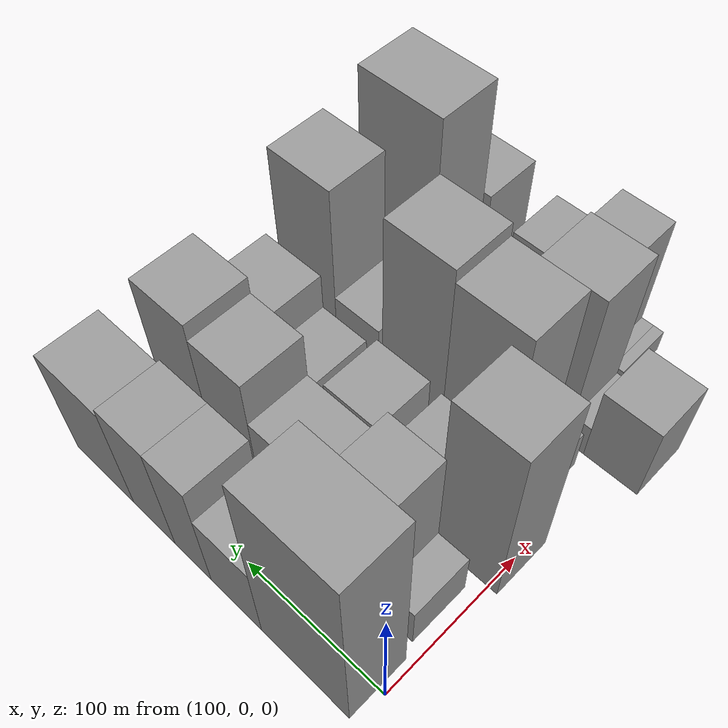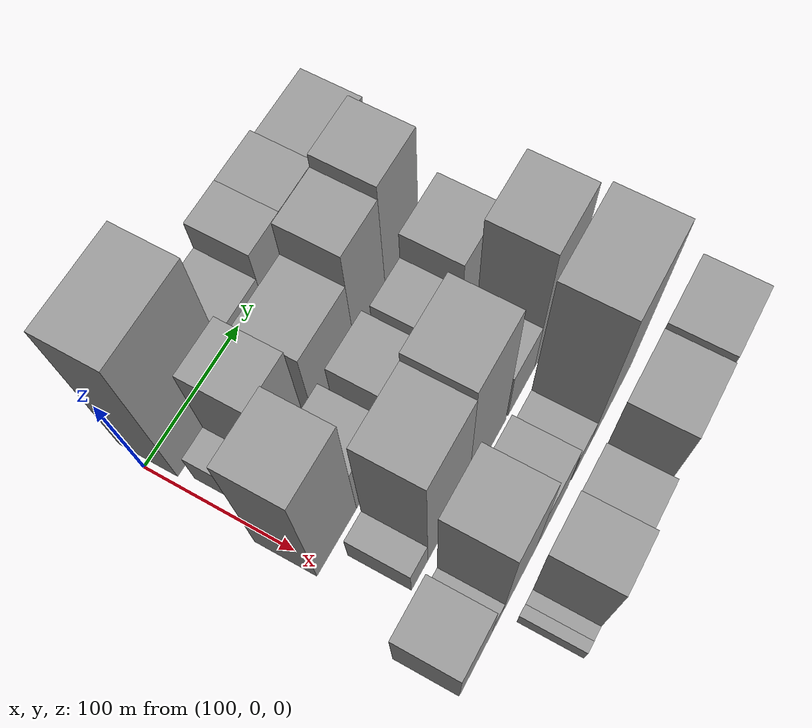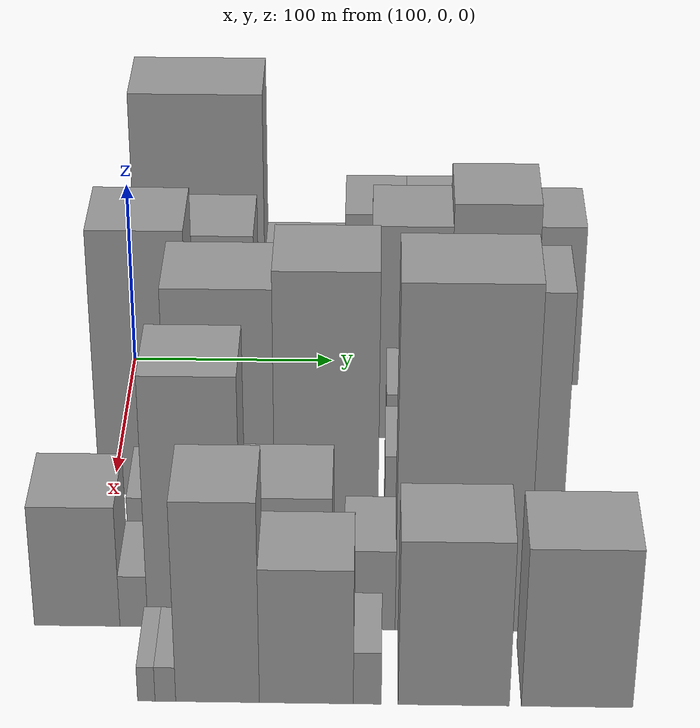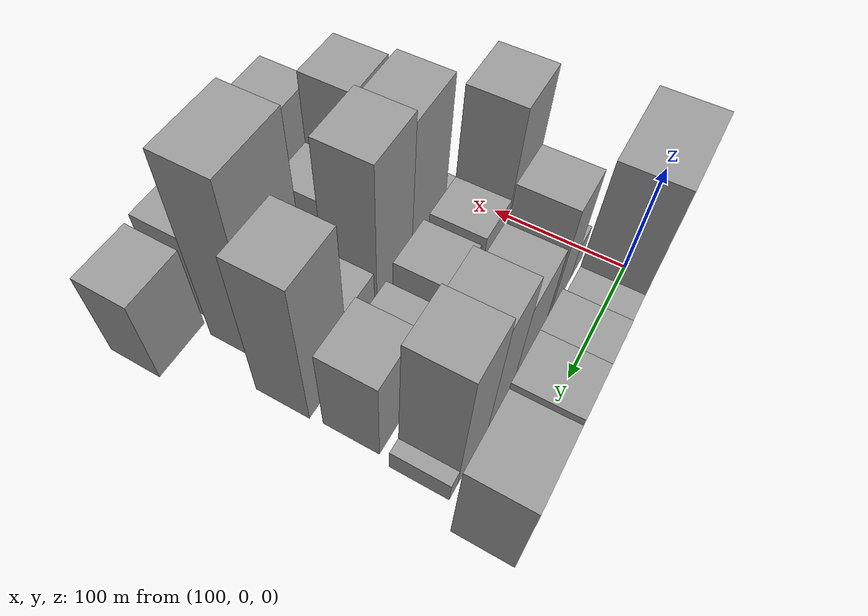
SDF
<sdf version="1.6">
 <world name="default">
  <model name="building_23">
   <static>1</static>
   <pose>100.0000 36.1751 0 0.000000 0.000000 0.000000</pose>
   <link name="link">
    <pose>0 0 79.50 0 0 0</pose>
    <collision name="collision"><geometry><box><size>40.0000 63.0457 159.0000</size></box></geometry></collision>
    <visual name="visual">
     <cast_shadows>0</cast_shadows>
     <geometry><box><size>40.0000 63.0457 159.0000</size></box></geometry>
     <material>
      <script>
       <uri>model://grey_wall/materials/scripts</uri>
       <uri>model://grey_wall/materials/textures</uri>
       <name>vrc/grey_wall</name>
      </script>
     </material>
    </visual>
   </link>
  </model>
  <model name="building_24">
   <static>1</static>
   <pose>100.0000 87.2624 0 0.000000 0.000000 0.000000</pose>
   <link name="link">
    <pose>0 0 34.50 0 0 0</pose>
    <collision name="collision"><geometry><box><size>40.0000 39.1290 69.0000</size></box></geometry></collision>
    <visual name="visual">
     <cast_shadows>0</cast_shadows>
     <geometry><box><size>40.0000 39.1290 69.0000</size></box></geometry>
     <material>
      <script>
       <uri>model://grey_wall/materials/scripts</uri>
       <uri>model://grey_wall/materials/textures</uri>
       <name>vrc/grey_wall</name>
      </script>
     </material>
    </visual>
   </link>
  </model>
  <model name="building_25">
   <static>1</static>
   <pose>100.0000 121.6511 0 0.000000 0.000000 0.000000</pose>
   <link name="link">
    <pose>0 0 48.00 0 0 0</pose>
    <collision name="collision"><geometry><box><size>40.0000 29.6482 96.0000</size></box></geometry></collision>
    <visual name="visual">
     <cast_shadows>0</cast_shadows>
     <geometry><box><size>40.0000 29.6482 96.0000</size></box></geometry>
     <material>
      <script>
       <uri>model://grey_wall/materials/scripts</uri>
       <uri>model://grey_wall/materials/textures</uri>
       <name>vrc/grey_wall</name>
      </script>
     </material>
    </visual>
   </link>
  </model>
  <model name="building_26">
   <static>1</static>
   <pose>100.0000 154.2542 0 0.000000 0.000000 0.000000</pose>
   <link name="link">
    <pose>0 0 48.00 0 0 0</pose>
    <collision name="collision"><geometry><box><size>40.0000 35.5580 96.0000</size></box></geometry></collision>
    <visual name="visual">
     <cast_shadows>0</cast_shadows>
     <geometry><box><size>40.0000 35.5580 96.0000</size></box></geometry>
     <material>
      <script>
       <uri>model://grey_wall/materials/scripts</uri>
       <uri>model://grey_wall/materials/textures</uri>
       <name>vrc/grey_wall</name>
      </script>
     </material>
    </visual>
   </link>
  </model>
  <model name="building_27">
   <static>1</static>
   <pose>100.0000 197.6740 0 0.000000 0.000000 0.000000</pose>
   <link name="link">
    <pose>0 0 45.00 0 0 0</pose>
    <collision name="collision"><geometry><box><size>40.0000 51.2816 90.0000</size></box></geometry></collision>
    <visual name="visual">
     <cast_shadows>0</cast_shadows>
     <geometry><box><size>40.0000 51.2816 90.0000</size></box></geometry>
     <material>
      <script>
       <uri>model://grey_wall/materials/scripts</uri>
       <uri>model://grey_wall/materials/textures</uri>
       <name>vrc/grey_wall</name>
      </script>
     </material>
    </visual>
   </link>
  </model>
  <model name="building_71">
   <static>1</static>
   <pose>149.0000 18.7210 0 0.000000 0.000000 0.000000</pose>
   <link name="link">
    <pose>0 0 18.00 0 0 0</pose>
    <collision name="collision"><geometry><box><size>40.0000 20.7294 36.0000</size></box></geometry></collision>
    <visual name="visual">
     <cast_shadows>0</cast_shadows>
     <geometry><box><size>40.0000 20.7294 36.0000</size></box></geometry>
     <material>
      <script>
       <uri>model://grey_wall/materials/scripts</uri>
       <uri>model://grey_wall/materials/textures</uri>
       <name>vrc/grey_wall</name>
      </script>
     </material>
    </visual>
   </link>
  </model>
  <model name="building_72">
   <static>1</static>
   <pose>149.0000 47.0269 0 0.000000 0.000000 0.000000</pose>
   <link name="link">
    <pose>0 0 55.50 0 0 0</pose>
    <collision name="collision"><geometry><box><size>40.0000 35.8823 111.0000</size></box></geometry></collision>
    <visual name="visual">
     <cast_shadows>0</cast_shadows>
     <geometry><box><size>40.0000 35.8823 111.0000</size></box></geometry>
     <material>
      <script>
       <uri>model://grey_wall/materials/scripts</uri>
       <uri>model://grey_wall/materials/textures</uri>
       <name>vrc/grey_wall</name>
      </script>
     </material>
    </visual>
   </link>
  </model>
  <model name="building_73">
   <static>1</static>
   <pose>149.0000 95.9971 0 0.000000 0.000000 0.000000</pose>
   <link name="link">
    <pose>0 0 42.00 0 0 0</pose>
    <collision name="collision"><geometry><box><size>40.0000 48.0582 84.0000</size></box></geometry></collision>
    <visual name="visual">
     <cast_shadows>0</cast_shadows>
     <geometry><box><size>40.0000 48.0582 84.0000</size></box></geometry>
     <material>
      <script>
       <uri>model://grey_wall/materials/scripts</uri>
       <uri>model://grey_wall/materials/textures</uri>
       <name>vrc/grey_wall</name>
      </script>
     </material>
    </visual>
   </link>
  </model>
  <model name="building_74">
   <static>1</static>
   <pose>149.0000 138.6217 0 0.000000 0.000000 0.000000</pose>
   <link name="link">
    <pose>0 0 58.50 0 0 0</pose>
    <collision name="collision"><geometry><box><size>40.0000 37.1909 117.0000</size></box></geometry></collision>
    <visual name="visual">
     <cast_shadows>0</cast_shadows>
     <geometry><box><size>40.0000 37.1909 117.0000</size></box></geometry>
     <material>
      <script>
       <uri>model://grey_wall/materials/scripts</uri>
       <uri>model://grey_wall/materials/textures</uri>
       <name>vrc/grey_wall</name>
      </script>
     </material>
    </visual>
   </link>
  </model>
  <model name="building_75">
   <static>1</static>
   <pose>149.0000 177.3120 0 0.000000 0.000000 0.000000</pose>
   <link name="link">
    <pose>0 0 64.50 0 0 0</pose>
    <collision name="collision"><geometry><box><size>40.0000 40.1896 129.0000</size></box></geometry></collision>
    <visual name="visual">
     <cast_shadows>0</cast_shadows>
     <geometry><box><size>40.0000 40.1896 129.0000</size></box></geometry>
     <material>
      <script>
       <uri>model://grey_wall/materials/scripts</uri>
       <uri>model://grey_wall/materials/textures</uri>
       <name>vrc/grey_wall</name>
      </script>
     </material>
    </visual>
   </link>
  </model>
  <model name="building_76">
   <static>1</static>
   <pose>149.0000 202.5892 0 0.000000 0.000000 0.000000</pose>
   <link name="link">
    <pose>0 0 10.50 0 0 0</pose>
    <collision name="collision"><geometry><box><size>40.0000 10.3649 21.0000</size></box></geometry></collision>
    <visual name="visual">
     <cast_shadows>0</cast_shadows>
     <geometry><box><size>40.0000 10.3649 21.0000</size></box></geometry>
     <material>
      <script>
       <uri>model://grey_wall/materials/scripts</uri>
       <uri>model://grey_wall/materials/textures</uri>
       <name>vrc/grey_wall</name>
      </script>
     </material>
    </visual>
   </link>
  </model>
  <model name="building_120">
   <static>1</static>
   <pose>198.0000 15.4298 0 0.000000 0.000000 0.000000</pose>
   <link name="link">
    <pose>0 0 70.50 0 0 0</pose>
    <collision name="collision"><geometry><box><size>40.0000 43.1489 141.0000</size></box></geometry></collision>
    <visual name="visual">
     <cast_shadows>0</cast_shadows>
     <geometry><box><size>40.0000 43.1489 141.0000</size></box></geometry>
     <material>
      <script>
       <uri>model://grey_wall/materials/scripts</uri>
       <uri>model://grey_wall/materials/textures</uri>
       <name>vrc/grey_wall</name>
      </script>
     </material>
    </visual>
   </link>
  </model>
  <model name="building_121">
   <static>1</static>
   <pose>198.0000 54.9198 0 0.000000 0.000000 0.000000</pose>
   <link name="link">
    <pose>0 0 31.50 0 0 0</pose>
    <collision name="collision"><geometry><box><size>40.0000 35.8312 63.0000</size></box></geometry></collision>
    <visual name="visual">
     <cast_shadows>0</cast_shadows>
     <geometry><box><size>40.0000 35.8312 63.0000</size></box></geometry>
     <material>
      <script>
       <uri>model://grey_wall/materials/scripts</uri>
       <uri>model://grey_wall/materials/textures</uri>
       <name>vrc/grey_wall</name>
      </script>
     </material>
    </visual>
   </link>
  </model>
  <model name="building_122">
   <static>1</static>
   <pose>198.0000 100.0027 0 0.000000 0.000000 0.000000</pose>
   <link name="link">
    <pose>0 0 33.00 0 0 0</pose>
    <collision name="collision"><geometry><box><size>40.0000 38.3345 66.0000</size></box></geometry></collision>
    <visual name="visual">
     <cast_shadows>0</cast_shadows>
     <geometry><box><size>40.0000 38.3345 66.0000</size></box></geometry>
     <material>
      <script>
       <uri>model://grey_wall/materials/scripts</uri>
       <uri>model://grey_wall/materials/textures</uri>
       <name>vrc/grey_wall</name>
      </script>
     </material>
    </visual>
   </link>
  </model>
  <model name="building_123">
   <static>1</static>
   <pose>198.0000 143.9667 0 0.000000 0.000000 0.000000</pose>
   <link name="link">
    <pose>0 0 28.50 0 0 0</pose>
    <collision name="collision"><geometry><box><size>40.0000 33.5934 57.0000</size></box></geometry></collision>
    <visual name="visual">
     <cast_shadows>0</cast_shadows>
     <geometry><box><size>40.0000 33.5934 57.0000</size></box></geometry>
     <material>
      <script>
       <uri>model://grey_wall/materials/scripts</uri>
       <uri>model://grey_wall/materials/textures</uri>
       <name>vrc/grey_wall</name>
      </script>
     </material>
    </visual>
   </link>
  </model>
  <model name="building_124">
   <static>1</static>
   <pose>198.0000 182.4248 0 0.000000 0.000000 0.000000</pose>
   <link name="link">
    <pose>0 0 42.00 0 0 0</pose>
    <collision name="collision"><geometry><box><size>40.0000 43.3229 84.0000</size></box></geometry></collision>
    <visual name="visual">
     <cast_shadows>0</cast_shadows>
     <geometry><box><size>40.0000 43.3229 84.0000</size></box></geometry>
     <material>
      <script>
       <uri>model://grey_wall/materials/scripts</uri>
       <uri>model://grey_wall/materials/textures</uri>
       <name>vrc/grey_wall</name>
      </script>
     </material>
    </visual>
   </link>
  </model>
  <model name="building_166">
   <static>1</static>
   <pose>247.0000 21.2258 0 0.000000 0.000000 0.000000</pose>
   <link name="link">
    <pose>0 0 16.50 0 0 0</pose>
    <collision name="collision"><geometry><box><size>40.0000 18.5061 33.0000</size></box></geometry></collision>
    <visual name="visual">
     <cast_shadows>0</cast_shadows>
     <geometry><box><size>40.0000 18.5061 33.0000</size></box></geometry>
     <material>
      <script>
       <uri>model://grey_wall/materials/scripts</uri>
       <uri>model://grey_wall/materials/textures</uri>
       <name>vrc/grey_wall</name>
      </script>
     </material>
    </visual>
   </link>
  </model>
  <model name="building_167">
   <static>1</static>
   <pose>247.0000 54.1543 0 0.000000 0.000000 0.000000</pose>
   <link name="link">
    <pose>0 0 70.50 0 0 0</pose>
    <collision name="collision"><geometry><box><size>40.0000 47.3509 141.0000</size></box></geometry></collision>
    <visual name="visual">
     <cast_shadows>0</cast_shadows>
     <geometry><box><size>40.0000 47.3509 141.0000</size></box></geometry>
     <material>
      <script>
       <uri>model://grey_wall/materials/scripts</uri>
       <uri>model://grey_wall/materials/textures</uri>
       <name>vrc/grey_wall</name>
      </script>
     </material>
    </visual>
   </link>
  </model>
  <model name="building_168">
   <static>1</static>
   <pose>247.0000 100.7148 0 0.000000 0.000000 0.000000</pose>
   <link name="link">
    <pose>0 0 75.00 0 0 0</pose>
    <collision name="collision"><geometry><box><size>40.0000 45.7701 150.0000</size></box></geometry></collision>
    <visual name="visual">
     <cast_shadows>0</cast_shadows>
     <geometry><box><size>40.0000 45.7701 150.0000</size></box></geometry>
     <material>
      <script>
       <uri>model://grey_wall/materials/scripts</uri>
       <uri>model://grey_wall/materials/textures</uri>
       <name>vrc/grey_wall</name>
      </script>
     </material>
    </visual>
   </link>
  </model>
  <model name="building_169">
   <static>1</static>
   <pose>247.0000 143.5671 0 0.000000 0.000000 0.000000</pose>
   <link name="link">
    <pose>0 0 28.50 0 0 0</pose>
    <collision name="collision"><geometry><box><size>40.0000 33.9347 57.0000</size></box></geometry></collision>
    <visual name="visual">
     <cast_shadows>0</cast_shadows>
     <geometry><box><size>40.0000 33.9347 57.0000</size></box></geometry>
     <material>
      <script>
       <uri>model://grey_wall/materials/scripts</uri>
       <uri>model://grey_wall/materials/textures</uri>
       <name>vrc/grey_wall</name>
      </script>
     </material>
    </visual>
   </link>
  </model>
  <model name="building_170">
   <static>1</static>
   <pose>247.0000 183.0940 0 0.000000 0.000000 0.000000</pose>
   <link name="link">
    <pose>0 0 70.50 0 0 0</pose>
    <collision name="collision"><geometry><box><size>40.0000 45.1190 141.0000</size></box></geometry></collision>
    <visual name="visual">
     <cast_shadows>0</cast_shadows>
     <geometry><box><size>40.0000 45.1190 141.0000</size></box></geometry>
     <material>
      <script>
       <uri>model://grey_wall/materials/scripts</uri>
       <uri>model://grey_wall/materials/textures</uri>
       <name>vrc/grey_wall</name>
      </script>
     </material>
    </visual>
   </link>
  </model>
  <model name="building_211">
   <static>1</static>
   <pose>296.0000 -6.0958 0 0.000000 0.000000 0.000000</pose>
   <link name="link">
    <pose>0 0 31.50 0 0 0</pose>
    <collision name="collision"><geometry><box><size>40.0000 37.0488 63.0000</size></box></geometry></collision>
    <visual name="visual">
     <cast_shadows>0</cast_shadows>
     <geometry><box><size>40.0000 37.0488 63.0000</size></box></geometry>
     <material>
      <script>
       <uri>model://grey_wall/materials/scripts</uri>
       <uri>model://grey_wall/materials/textures</uri>
       <name>vrc/grey_wall</name>
      </script>
     </material>
    </visual>
   </link>
  </model>
  <model name="building_212">
   <static>1</static>
   <pose>296.0000 18.4935 0 0.000000 0.000000 0.000000</pose>
   <link name="link">
    <pose>0 0 13.50 0 0 0</pose>
    <collision name="collision"><geometry><box><size>40.0000 12.1298 27.0000</size></box></geometry></collision>
    <visual name="visual">
     <cast_shadows>0</cast_shadows>
     <geometry><box><size>40.0000 12.1298 27.0000</size></box></geometry>
     <material>
      <script>
       <uri>model://grey_wall/materials/scripts</uri>
       <uri>model://grey_wall/materials/textures</uri>
       <name>vrc/grey_wall</name>
      </script>
     </material>
    </visual>
   </link>
  </model>
  <model name="building_213">
   <static>1</static>
   <pose>296.0000 44.9149 0 0.000000 0.000000 0.000000</pose>
   <link name="link">
    <pose>0 0 64.50 0 0 0</pose>
    <collision name="collision"><geometry><box><size>40.0000 40.7130 129.0000</size></box></geometry></collision>
    <visual name="visual">
     <cast_shadows>0</cast_shadows>
     <geometry><box><size>40.0000 40.7130 129.0000</size></box></geometry>
     <material>
      <script>
       <uri>model://grey_wall/materials/scripts</uri>
       <uri>model://grey_wall/materials/textures</uri>
       <name>vrc/grey_wall</name>
      </script>
     </material>
    </visual>
   </link>
  </model>
  <model name="building_214">
   <static>1</static>
   <pose>296.0000 84.7543 0 0.000000 0.000000 0.000000</pose>
   <link name="link">
    <pose>0 0 34.50 0 0 0</pose>
    <collision name="collision"><geometry><box><size>40.0000 38.9658 69.0000</size></box></geometry></collision>
    <visual name="visual">
     <cast_shadows>0</cast_shadows>
     <geometry><box><size>40.0000 38.9658 69.0000</size></box></geometry>
     <material>
      <script>
       <uri>model://grey_wall/materials/scripts</uri>
       <uri>model://grey_wall/materials/textures</uri>
       <name>vrc/grey_wall</name>
      </script>
     </material>
    </visual>
   </link>
  </model>
  <model name="building_215">
   <static>1</static>
   <pose>296.0000 120.3159 0 0.000000 0.000000 0.000000</pose>
   <link name="link">
    <pose>0 0 21.00 0 0 0</pose>
    <collision name="collision"><geometry><box><size>40.0000 22.1574 42.0000</size></box></geometry></collision>
    <visual name="visual">
     <cast_shadows>0</cast_shadows>
     <geometry><box><size>40.0000 22.1574 42.0000</size></box></geometry>
     <material>
      <script>
       <uri>model://grey_wall/materials/scripts</uri>
       <uri>model://grey_wall/materials/textures</uri>
       <name>vrc/grey_wall</name>
      </script>
     </material>
    </visual>
   </link>
  </model>
  <model name="building_216">
   <static>1</static>
   <pose>296.0000 159.7885 0 0.000000 0.000000 0.000000</pose>
   <link name="link">
    <pose>0 0 87.00 0 0 0</pose>
    <collision name="collision"><geometry><box><size>40.0000 56.7877 174.0000</size></box></geometry></collision>
    <visual name="visual">
     <cast_shadows>0</cast_shadows>
     <geometry><box><size>40.0000 56.7877 174.0000</size></box></geometry>
     <material>
      <script>
       <uri>model://grey_wall/materials/scripts</uri>
       <uri>model://grey_wall/materials/textures</uri>
       <name>vrc/grey_wall</name>
      </script>
     </material>
    </visual>
   </link>
  </model>
  <model name="building_257">
   <static>1</static>
   <pose>345.0000 27.9882 0 0.000000 0.000000 0.000000</pose>
   <link name="link">
    <pose>0 0 9.00 0 0 0</pose>
    <collision name="collision"><geometry><box><size>40.0000 7.2327 18.0000</size></box></geometry></collision>
    <visual name="visual">
     <cast_shadows>0</cast_shadows>
     <geometry><box><size>40.0000 7.2327 18.0000</size></box></geometry>
     <material>
      <script>
       <uri>model://grey_wall/materials/scripts</uri>
       <uri>model://grey_wall/materials/textures</uri>
       <name>vrc/grey_wall</name>
      </script>
     </material>
    </visual>
   </link>
  </model>
  <model name="building_258">
   <static>1</static>
   <pose>345.0000 35.9113 0 0.000000 0.000000 0.000000</pose>
   <link name="link">
    <pose>0 0 9.00 0 0 0</pose>
    <collision name="collision"><geometry><box><size>40.0000 8.6136 18.0000</size></box></geometry></collision>
    <visual name="visual">
     <cast_shadows>0</cast_shadows>
     <geometry><box><size>40.0000 8.6136 18.0000</size></box></geometry>
     <material>
      <script>
       <uri>model://grey_wall/materials/scripts</uri>
       <uri>model://grey_wall/materials/textures</uri>
       <name>vrc/grey_wall</name>
      </script>
     </material>
    </visual>
   </link>
  </model>
  <model name="building_259">
   <static>1</static>
   <pose>345.0000 57.6067 0 0.000000 0.000000 0.000000</pose>
   <link name="link">
    <pose>0 0 51.00 0 0 0</pose>
    <collision name="collision"><geometry><box><size>40.0000 34.7772 102.0000</size></box></geometry></collision>
    <visual name="visual">
     <cast_shadows>0</cast_shadows>
     <geometry><box><size>40.0000 34.7772 102.0000</size></box></geometry>
     <material>
      <script>
       <uri>model://grey_wall/materials/scripts</uri>
       <uri>model://grey_wall/materials/textures</uri>
       <name>vrc/grey_wall</name>
      </script>
     </material>
    </visual>
   </link>
  </model>
  <model name="building_260">
   <static>1</static>
   <pose>345.0000 94.4721 0 0.000000 0.000000 0.000000</pose>
   <link name="link">
    <pose>0 0 34.50 0 0 0</pose>
    <collision name="collision"><geometry><box><size>40.0000 38.9536 69.0000</size></box></geometry></collision>
    <visual name="visual">
     <cast_shadows>0</cast_shadows>
     <geometry><box><size>40.0000 38.9536 69.0000</size></box></geometry>
     <material>
      <script>
       <uri>model://grey_wall/materials/scripts</uri>
       <uri>model://grey_wall/materials/textures</uri>
       <name>vrc/grey_wall</name>
      </script>
     </material>
    </visual>
   </link>
  </model>
  <model name="building_261">
   <static>1</static>
   <pose>345.0000 119.7421 0 0.000000 0.000000 0.000000</pose>
   <link name="link">
    <pose>0 0 13.50 0 0 0</pose>
    <collision name="collision"><geometry><box><size>40.0000 11.5863 27.0000</size></box></geometry></collision>
    <visual name="visual">
     <cast_shadows>0</cast_shadows>
     <geometry><box><size>40.0000 11.5863 27.0000</size></box></geometry>
     <material>
      <script>
       <uri>model://grey_wall/materials/scripts</uri>
       <uri>model://grey_wall/materials/textures</uri>
       <name>vrc/grey_wall</name>
      </script>
     </material>
    </visual>
   </link>
  </model>
  <model name="building_262">
   <static>1</static>
   <pose>345.0000 155.5573 0 0.000000 0.000000 0.000000</pose>
   <link name="link">
    <pose>0 0 42.00 0 0 0</pose>
    <collision name="collision"><geometry><box><size>40.0000 46.0441 84.0000</size></box></geometry></collision>
    <visual name="visual">
     <cast_shadows>0</cast_shadows>
     <geometry><box><size>40.0000 46.0441 84.0000</size></box></geometry>
     <material>
      <script>
       <uri>model://grey_wall/materials/scripts</uri>
       <uri>model://grey_wall/materials/textures</uri>
       <name>vrc/grey_wall</name>
      </script>
     </material>
    </visual>
   </link>
  </model>
  <model name="building_263">
   <static>1</static>
   <pose>345.0000 206.5956 0 0.000000 0.000000 0.000000</pose>
   <link name="link">
    <pose>0 0 40.50 0 0 0</pose>
    <collision name="collision"><geometry><box><size>40.0000 46.0326 81.0000</size></box></geometry></collision>
    <visual name="visual">
     <cast_shadows>0</cast_shadows>
     <geometry><box><size>40.0000 46.0326 81.0000</size></box></geometry>
     <material>
      <script>
       <uri>model://grey_wall/materials/scripts</uri>
       <uri>model://grey_wall/materials/textures</uri>
       <name>vrc/grey_wall</name>
      </script>
     </material>
    </visual>
   </link>
  </model>
 </world>
</sdf>
